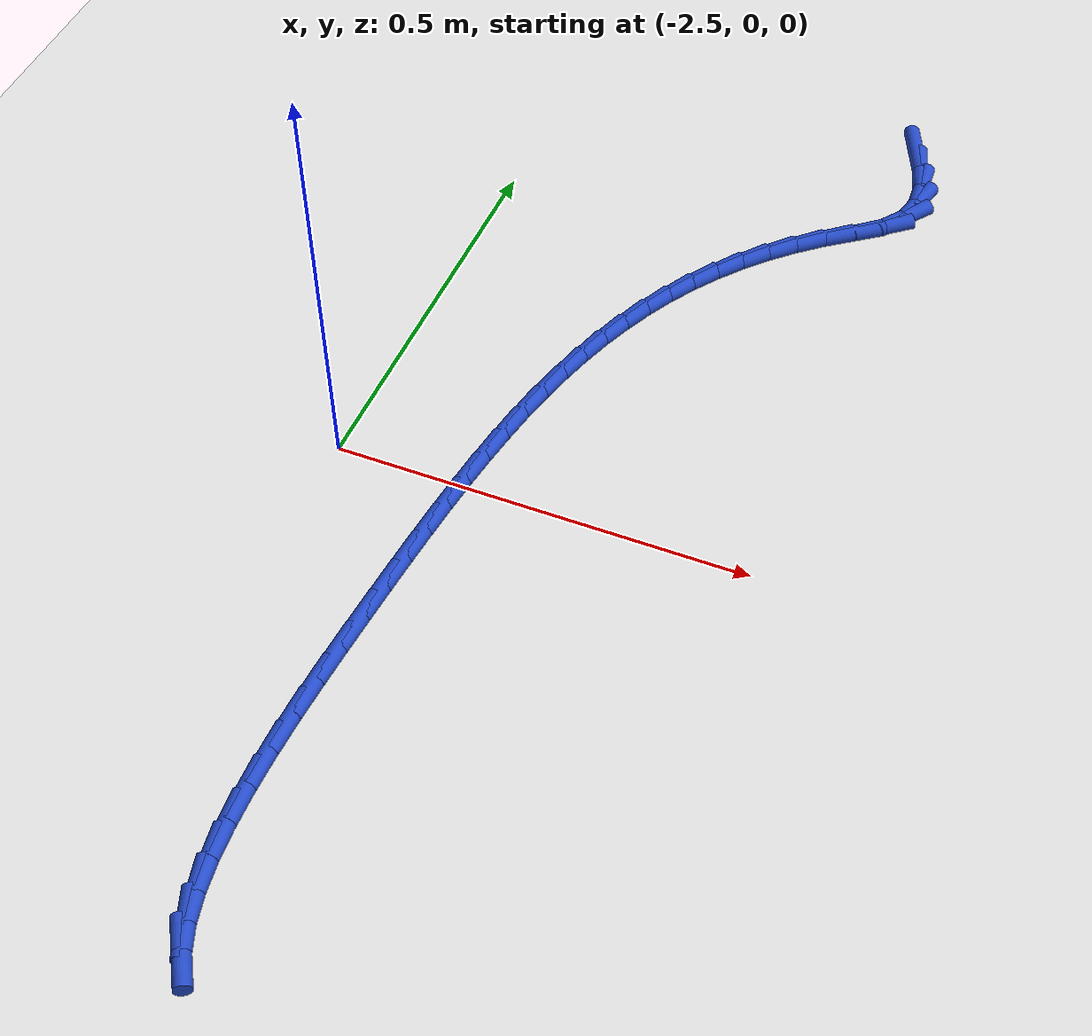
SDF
<sdf version="1.6">
 <world name="default">
  <model name="ground_plane">
   <static>1</static>
   <link name="link">
    <collision name="collision">
     <geometry><plane><normal>0 0 1</normal><size>100 100</size></plane></geometry>
     <surface><friction><ode><mu>100</mu><mu2>50</mu2></ode></friction></surface>
    </collision>
    <visual name="visual">
     <cast_shadows>0</cast_shadows>
     <geometry><plane><normal>0 0 1</normal><size>100 100</size></plane></geometry>
     <material>
      <script><uri>file://media/materials/scripts/gazebo.material</uri><name>Gazebo/WhiteGlow</name></script>
     </material>
    </visual>
   </link>
  </model>
  <model name="line">
   <link name="link_95">
    <pose>-2.0369764362585046 0.74017170048392 0.01 0 1.57 -1.138392119569944</pose>
    <collision name="collision">
     <geometry><cylinder><radius>0.01</radius><length>0.08</length></cylinder></geometry>
    </collision>
    <visual name="visual">
     <material>
      <script><name>Gazebo/Blue</name><uri>file://media/materials/scripts/gazebo.material</uri></script>
     </material>
     <geometry><cylinder><radius>0.01</radius><length>0.08</length></cylinder></geometry>
    </visual>
   </link>
   <link name="link_96">
    <pose>-2.020513368189838 0.7045013851405328 0.01 0 1.57 -1.26590655161999</pose>
    <collision name="collision">
     <geometry><cylinder><radius>0.01</radius><length>0.08</length></cylinder></geometry>
    </collision>
    <visual name="visual">
     <material>
      <script><name>Gazebo/Blue</name><uri>file://media/materials/scripts/gazebo.material</uri></script>
     </material>
     <geometry><cylinder><radius>0.01</radius><length>0.08</length></cylinder></geometry>
    </visual>
   </link>
   <link name="link_97">
    <pose>-2.0099066543803694 0.6707974014485827 0.01 0 1.57 -1.4846553773351137</pose>
    <collision name="collision">
     <geometry><cylinder><radius>0.01</radius><length>0.08</length></cylinder></geometry>
    </collision>
    <visual name="visual">
     <material>
      <script><name>Gazebo/Blue</name><uri>file://media/materials/scripts/gazebo.material</uri></script>
     </material>
     <geometry><cylinder><radius>0.01</radius><length>0.08</length></cylinder></geometry>
    </visual>
   </link>
   <link name="link_98">
    <pose>-2.0071879895985685 0.6393148479443647 0.01 0 1.57 1.3274545738007524</pose>
    <collision name="collision">
     <geometry><cylinder><radius>0.01</radius><length>0.08</length></cylinder></geometry>
    </collision>
    <visual name="visual">
     <material>
      <script><name>Gazebo/Blue</name><uri>file://media/materials/scripts/gazebo.material</uri></script>
     </material>
     <geometry><cylinder><radius>0.01</radius><length>0.08</length></cylinder></geometry>
    </visual>
   </link>
   <link name="link_99">
    <pose>-2.014389068612903 0.6103088231641736 0.01 0 1.57 0.9417489075000196</pose>
    <collision name="collision">
     <geometry><cylinder><radius>0.01</radius><length>0.08</length></cylinder></geometry>
    </collision>
    <visual name="visual">
     <material>
      <script><name>Gazebo/Blue</name><uri>file://media/materials/scripts/gazebo.material</uri></script>
     </material>
     <geometry><cylinder><radius>0.01</radius><length>0.08</length></cylinder></geometry>
    </visual>
   </link>
   <link name="link_100">
    <pose>-2.0335126682295357 0.5840277513129495 0.01 0 1.57 0.6838257862746775</pose>
    <collision name="collision">
     <geometry><cylinder><radius>0.01</radius><length>0.08</length></cylinder></geometry>
    </collision>
    <visual name="visual">
     <material>
      <script><name>Gazebo/Blue</name><uri>file://media/materials/scripts/gazebo.material</uri></script>
     </material>
     <geometry><cylinder><radius>0.01</radius><length>0.08</length></cylinder></geometry>
    </visual>
   </link>
   <link name="link_101">
    <pose>-2.063093020599734 0.5599195086142398 0.01 0 1.57 0.6436396736419255</pose>
    <collision name="collision">
     <geometry><cylinder><radius>0.01</radius><length>0.08</length></cylinder></geometry>
    </collision>
    <visual name="visual">
     <material>
      <script><name>Gazebo/Blue</name><uri>file://media/materials/scripts/gazebo.material</uri></script>
     </material>
     <geometry><cylinder><radius>0.01</radius><length>0.08</length></cylinder></geometry>
    </visual>
   </link>
   <link name="link_102">
    <pose>-2.0950871230902983 0.5359170040607455 0.01 0 1.57 0.7020694080335425</pose>
    <collision name="collision">
     <geometry><cylinder><radius>0.01</radius><length>0.08</length></cylinder></geometry>
    </collision>
    <visual name="visual">
     <material>
      <script><name>Gazebo/Blue</name><uri>file://media/materials/scripts/gazebo.material</uri></script>
     </material>
     <geometry><cylinder><radius>0.01</radius><length>0.08</length></cylinder></geometry>
    </visual>
   </link>
   <link name="link_103">
    <pose>-2.1247730586447675 0.5108076865131468 0.01 0 1.57 0.767039312121193</pose>
    <collision name="collision">
     <geometry><cylinder><radius>0.01</radius><length>0.08</length></cylinder></geometry>
    </collision>
    <visual name="visual">
     <material>
      <script><name>Gazebo/Blue</name><uri>file://media/materials/scripts/gazebo.material</uri></script>
     </material>
     <geometry><cylinder><radius>0.01</radius><length>0.08</length></cylinder></geometry>
    </visual>
   </link>
   <link name="link_104">
    <pose>-2.152024797814912 0.484538637932432 0.01 0 1.57 0.8328126675281174</pose>
    <collision name="collision">
     <geometry><cylinder><radius>0.01</radius><length>0.08</length></cylinder></geometry>
    </collision>
    <visual name="visual">
     <material>
      <script><name>Gazebo/Blue</name><uri>file://media/materials/scripts/gazebo.material</uri></script>
     </material>
     <geometry><cylinder><radius>0.01</radius><length>0.08</length></cylinder></geometry>
    </visual>
   </link>
   <link name="link_105">
    <pose>-2.1769605747135174 0.45711857279428325 0.01 0 1.57 0.8984476435985272</pose>
    <collision name="collision">
     <geometry><cylinder><radius>0.01</radius><length>0.08</length></cylinder></geometry>
    </collision>
    <visual name="visual">
     <material>
      <script><name>Gazebo/Blue</name><uri>file://media/materials/scripts/gazebo.material</uri></script>
     </material>
     <geometry><cylinder><radius>0.01</radius><length>0.08</length></cylinder></geometry>
    </visual>
   </link>
   <link name="link_106">
    <pose>-2.199698623453371 0.42855620557438423 0.01 0 1.57 0.9629830033524637</pose>
    <collision name="collision">
     <geometry><cylinder><radius>0.01</radius><length>0.08</length></cylinder></geometry>
    </collision>
    <visual name="visual">
     <material>
      <script><name>Gazebo/Blue</name><uri>file://media/materials/scripts/gazebo.material</uri></script>
     </material>
     <geometry><cylinder><radius>0.01</radius><length>0.08</length></cylinder></geometry>
    </visual>
   </link>
   <link name="link_107">
    <pose>-2.2203571781472586 0.39886025074841763 0.01 0 1.57 1.025505269897224</pose>
    <collision name="collision">
     <geometry><cylinder><radius>0.01</radius><length>0.08</length></cylinder></geometry>
    </collision>
    <visual name="visual">
     <material>
      <script><name>Gazebo/Blue</name><uri>file://media/materials/scripts/gazebo.material</uri></script>
     </material>
     <geometry><cylinder><radius>0.01</radius><length>0.08</length></cylinder></geometry>
    </visual>
   </link>
   <link name="link_108">
    <pose>-2.239054472907968 0.36803942279206625 0.01 0 1.57 1.0852076110525115</pose>
    <collision name="collision">
     <geometry><cylinder><radius>0.01</radius><length>0.08</length></cylinder></geometry>
    </collision>
    <visual name="visual">
     <material>
      <script><name>Gazebo/Blue</name><uri>file://media/materials/scripts/gazebo.material</uri></script>
     </material>
     <geometry><cylinder><radius>0.01</radius><length>0.08</length></cylinder></geometry>
    </visual>
   </link>
   <link name="link_109">
    <pose>-2.255908741848285 0.3361024361810137 0.01 0 1.57 1.1414314305284285</pose>
    <collision name="collision">
     <geometry><cylinder><radius>0.01</radius><length>0.08</length></cylinder></geometry>
    </collision>
    <visual name="visual">
     <material>
      <script><name>Gazebo/Blue</name><uri>file://media/materials/scripts/gazebo.material</uri></script>
     </material>
     <geometry><cylinder><radius>0.01</radius><length>0.08</length></cylinder></geometry>
    </visual>
   </link>
   <link name="link_110">
    <pose>-2.2710382190809963 0.3030580053909425 0.01 0 1.57 1.193686564962468</pose>
    <collision name="collision">
     <geometry><cylinder><radius>0.01</radius><length>0.08</length></cylinder></geometry>
    </collision>
    <visual name="visual">
     <material>
      <script><name>Gazebo/Blue</name><uri>file://media/materials/scripts/gazebo.material</uri></script>
     </material>
     <geometry><cylinder><radius>0.01</radius><length>0.08</length></cylinder></geometry>
    </visual>
   </link>
   <link name="link_111">
    <pose>-2.2845611387188884 0.26891484489753636 0.01 0 1.57 1.2416511712960887</pose>
    <collision name="collision">
     <geometry><cylinder><radius>0.01</radius><length>0.08</length></cylinder></geometry>
    </collision>
    <visual name="visual">
     <material>
      <script><name>Gazebo/Blue</name><uri>file://media/materials/scripts/gazebo.material</uri></script>
     </material>
     <geometry><cylinder><radius>0.01</radius><length>0.08</length></cylinder></geometry>
    </visual>
   </link>
   <link name="link_112">
    <pose>-2.296595734874748 0.2336816691764774 0.01 0 1.57 1.285156067237017</pose>
    <collision name="collision">
     <geometry><cylinder><radius>0.01</radius><length>0.08</length></cylinder></geometry>
    </collision>
    <visual name="visual">
     <material>
      <script><name>Gazebo/Blue</name><uri>file://media/materials/scripts/gazebo.material</uri></script>
     </material>
     <geometry><cylinder><radius>0.01</radius><length>0.08</length></cylinder></geometry>
    </visual>
   </link>
   <link name="link_113">
    <pose>-2.3072602416613606 0.19736719270344968 0.01 0 1.57 1.3241597520328656</pose>
    <collision name="collision">
     <geometry><cylinder><radius>0.01</radius><length>0.08</length></cylinder></geometry>
    </collision>
    <visual name="visual">
     <material>
      <script><name>Gazebo/Blue</name><uri>file://media/materials/scripts/gazebo.material</uri></script>
     </material>
     <geometry><cylinder><radius>0.01</radius><length>0.08</length></cylinder></geometry>
    </visual>
   </link>
   <link name="link_114">
    <pose>-2.3166728931915146 0.1599801299541351 0.01 0 1.57 1.358719913734218</pose>
    <collision name="collision">
     <geometry><cylinder><radius>0.01</radius><length>0.08</length></cylinder></geometry>
    </collision>
    <visual name="visual">
     <material>
      <script><name>Gazebo/Blue</name><uri>file://media/materials/scripts/gazebo.material</uri></script>
     </material>
     <geometry><cylinder><radius>0.01</radius><length>0.08</length></cylinder></geometry>
    </visual>
   </link>
   <link name="link_115">
    <pose>-2.3249519235779954 0.12152919540421783 0.01 0 1.57 1.3889657544582772</pose>
    <collision name="collision">
     <geometry><cylinder><radius>0.01</radius><length>0.08</length></cylinder></geometry>
    </collision>
    <visual name="visual">
     <material>
      <script><name>Gazebo/Blue</name><uri>file://media/materials/scripts/gazebo.material</uri></script>
     </material>
     <geometry><cylinder><radius>0.01</radius><length>0.08</length></cylinder></geometry>
    </visual>
   </link>
   <link name="link_116">
    <pose>-2.3322155669335896 0.08202310352938039 0.01 0 1.57 1.4150737402939961</pose>
    <collision name="collision">
     <geometry><cylinder><radius>0.01</radius><length>0.08</length></cylinder></geometry>
    </collision>
    <visual name="visual">
     <material>
      <script><name>Gazebo/Blue</name><uri>file://media/materials/scripts/gazebo.material</uri></script>
     </material>
     <geometry><cylinder><radius>0.01</radius><length>0.08</length></cylinder></geometry>
    </visual>
   </link>
   <link name="link_117">
    <pose>-2.3385820573710836 0.04147056880530478 0.01 0 1.57 1.4372479140591885</pose>
    <collision name="collision">
     <geometry><cylinder><radius>0.01</radius><length>0.08</length></cylinder></geometry>
    </collision>
    <visual name="visual">
     <material>
      <script><name>Gazebo/Blue</name><uri>file://media/materials/scripts/gazebo.material</uri></script>
     </material>
     <geometry><cylinder><radius>0.01</radius><length>0.08</length></cylinder></geometry>
    </visual>
   </link>
   <link name="link_118">
    <pose>-2.3441696290032654 -0.0001196942923239186 0.01 0 1.57 1.4557048907277026</pose>
    <collision name="collision">
     <geometry><cylinder><radius>0.01</radius><length>0.08</length></cylinder></geometry>
    </collision>
    <visual name="visual">
     <material>
      <script><name>Gazebo/Blue</name><uri>file://media/materials/scripts/gazebo.material</uri></script>
     </material>
     <geometry><cylinder><radius>0.01</radius><length>0.08</length></cylinder></geometry>
    </visual>
   </link>
   <link name="link_119">
    <pose>-2.3490965159429185 -0.042738971287823696 0.01 0 1.57 1.4706630727484202</pose>
    <collision name="collision">
     <geometry><cylinder><radius>0.01</radius><length>0.08</length></cylinder></geometry>
    </collision>
    <visual name="visual">
     <material>
      <script><name>Gazebo/Blue</name><uri>file://media/materials/scripts/gazebo.material</uri></script>
     </material>
     <geometry><cylinder><radius>0.01</radius><length>0.08</length></cylinder></geometry>
    </visual>
   </link>
   <link name="link_120">
    <pose>-2.353480952302833 -0.0863785477055115 0.01 0 1.57 1.4823353695530652</pose>
    <collision name="collision">
     <geometry><cylinder><radius>0.01</radius><length>0.08</length></cylinder></geometry>
    </collision>
    <visual name="visual">
     <material>
      <script><name>Gazebo/Blue</name><uri>file://media/materials/scripts/gazebo.material</uri></script>
     </material>
     <geometry><cylinder><radius>0.01</radius><length>0.08</length></cylinder></geometry>
    </visual>
   </link>
   <link name="link_121">
    <pose>-2.3574411721957933 -0.13102970906970432 0.01 0 1.57 1.4909246622306453</pose>
    <collision name="collision">
     <geometry><cylinder><radius>0.01</radius><length>0.08</length></cylinder></geometry>
    </collision>
    <visual name="visual">
     <material>
      <script><name>Gazebo/Blue</name><uri>file://media/materials/scripts/gazebo.material</uri></script>
     </material>
     <geometry><cylinder><radius>0.01</radius><length>0.08</length></cylinder></geometry>
    </visual>
   </link>
   <link name="link_122">
    <pose>-2.3610954097345864 -0.17668374090472028 0.01 0 1.57 1.4966214408377763</pose>
    <collision name="collision">
     <geometry><cylinder><radius>0.01</radius><length>0.08</length></cylinder></geometry>
    </collision>
    <visual name="visual">
     <material>
      <script><name>Gazebo/Blue</name><uri>file://media/materials/scripts/gazebo.material</uri></script>
     </material>
     <geometry><cylinder><radius>0.01</radius><length>0.08</length></cylinder></geometry>
    </visual>
   </link>
   <link name="link_123">
    <pose>-2.364561892870968 -0.2233319201136455 0.01 0 1.57 1.5011227937123892</pose>
    <collision name="collision">
     <geometry><cylinder><radius>0.01</radius><length>0.08</length></cylinder></geometry>
    </collision>
    <visual name="visual">
     <material>
      <script><name>Gazebo/Blue</name><uri>file://media/materials/scripts/gazebo.material</uri></script>
     </material>
     <geometry><cylinder><radius>0.01</radius><length>0.08</length></cylinder></geometry>
    </visual>
   </link>
   <link name="link_124">
    <pose>-2.3678781992594775 -0.27085266834210087 0.01 0 1.57 1.5098568631525529</pose>
    <collision name="collision">
     <geometry><cylinder><radius>0.01</radius><length>0.08</length></cylinder></geometry>
    </collision>
    <visual name="visual">
     <material>
      <script><name>Gazebo/Blue</name><uri>file://media/materials/scripts/gazebo.material</uri></script>
     </material>
     <geometry><cylinder><radius>0.01</radius><length>0.08</length></cylinder></geometry>
    </visual>
   </link>
   <link name="link_125">
    <pose>-2.370799377847863 -0.3187290602742456 0.01 0 1.57 1.5242347103777683</pose>
    <collision name="collision">
     <geometry><cylinder><radius>0.01</radius><length>0.08</length></cylinder></geometry>
    </collision>
    <visual name="visual">
     <material>
      <script><name>Gazebo/Blue</name><uri>file://media/materials/scripts/gazebo.material</uri></script>
     </material>
     <geometry><cylinder><radius>0.01</radius><length>0.08</length></cylinder></geometry>
    </visual>
   </link>
   <link name="link_126">
    <pose>-2.373018645916731 -0.36635764854836866 0.01 0 1.57 1.5449225864542464</pose>
    <collision name="collision">
     <geometry><cylinder><radius>0.01</radius><length>0.08</length></cylinder></geometry>
    </collision>
    <visual name="visual">
     <material>
      <script><name>Gazebo/Blue</name><uri>file://media/materials/scripts/gazebo.material</uri></script>
     </material>
     <geometry><cylinder><radius>0.01</radius><length>0.08</length></cylinder></geometry>
    </visual>
   </link>
   <link name="link_127">
    <pose>-2.3742292207466855 -0.413134985802755 0.01 0 1.57 -1.5684817894324974</pose>
    <collision name="collision">
     <geometry><cylinder><radius>0.01</radius><length>0.08</length></cylinder></geometry>
    </collision>
    <visual name="visual">
     <material>
      <script><name>Gazebo/Blue</name><uri>file://media/materials/scripts/gazebo.material</uri></script>
     </material>
     <geometry><cylinder><radius>0.01</radius><length>0.08</length></cylinder></geometry>
    </visual>
   </link>
   <link name="link_128">
    <pose>-2.37412431961833 -0.4584576246756931 0.01 0 1.57 -1.5308965604337852</pose>
    <collision name="collision">
     <geometry><cylinder><radius>0.01</radius><length>0.08</length></cylinder></geometry>
    </collision>
    <visual name="visual">
     <material>
      <script><name>Gazebo/Blue</name><uri>file://media/materials/scripts/gazebo.material</uri></script>
     </material>
     <geometry><cylinder><radius>0.01</radius><length>0.08</length></cylinder></geometry>
    </visual>
   </link>
   <link name="link_129">
    <pose>-2.37239715981227 -0.5017221178054706 0.01 0 1.57 -1.4809907519672232</pose>
    <collision name="collision">
     <geometry><cylinder><radius>0.01</radius><length>0.08</length></cylinder></geometry>
    </collision>
    <visual name="visual">
     <material>
      <script><name>Gazebo/Blue</name><uri>file://media/materials/scripts/gazebo.material</uri></script>
     </material>
     <geometry><cylinder><radius>0.01</radius><length>0.08</length></cylinder></geometry>
    </visual>
   </link>
   <link name="link_130">
    <pose>-2.3687409586091084 -0.5423250178303746 0.01 0 1.57 -1.4142839808436345</pose>
    <collision name="collision">
     <geometry><cylinder><radius>0.01</radius><length>0.08</length></cylinder></geometry>
    </collision>
    <visual name="visual">
     <material>
      <script><name>Gazebo/Blue</name><uri>file://media/materials/scripts/gazebo.material</uri></script>
     </material>
     <geometry><cylinder><radius>0.01</radius><length>0.08</length></cylinder></geometry>
    </visual>
   </link>
   <link name="link_131">
    <pose>-2.362848933289451 -0.5796628773886937 0.01 0 1.57 -1.3239263520003977</pose>
    <collision name="collision">
     <geometry><cylinder><radius>0.01</radius><length>0.08</length></cylinder></geometry>
    </collision>
    <visual name="visual">
     <material>
      <script><name>Gazebo/Blue</name><uri>file://media/materials/scripts/gazebo.material</uri></script>
     </material>
     <geometry><cylinder><radius>0.01</radius><length>0.08</length></cylinder></geometry>
    </visual>
   </link>
   <link name="link_132">
    <pose>-2.3544143011339003 -0.6131322491187133 0.01 0 1.57 -1.1996881534728057</pose>
    <collision name="collision">
     <geometry><cylinder><radius>0.01</radius><length>0.08</length></cylinder></geometry>
    </collision>
    <visual name="visual">
     <material>
      <script><name>Gazebo/Blue</name><uri>file://media/materials/scripts/gazebo.material</uri></script>
     </material>
     <geometry><cylinder><radius>0.01</radius><length>0.08</length></cylinder></geometry>
    </visual>
   </link>
   <link name="link_133">
    <pose>-2.343130279423063 -0.6421296856587222 0.01 0 1.57 -1.027708167240378</pose>
    <collision name="collision">
     <geometry><cylinder><radius>0.01</radius><length>0.08</length></cylinder></geometry>
    </collision>
    <visual name="visual">
     <material>
      <script><name>Gazebo/Blue</name><uri>file://media/materials/scripts/gazebo.material</uri></script>
     </material>
     <geometry><cylinder><radius>0.01</radius><length>0.08</length></cylinder></geometry>
    </visual>
   </link>
  </model>
 </world>
</sdf>
